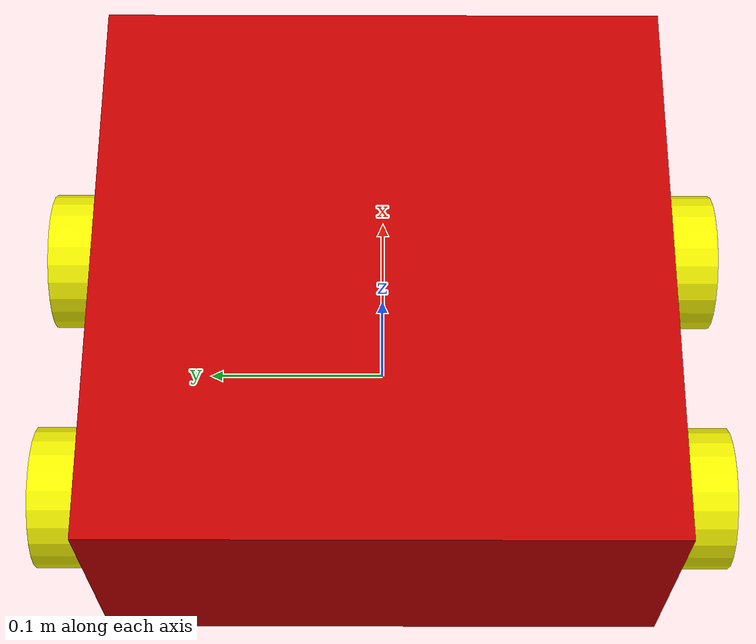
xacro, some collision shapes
<?xml version="1.0"?>
<robot xmlns:xacro="http://www.ros.org/wiki/xacro"  name="robot">

    <xacro:arg name="use_ros2_control" default="true"/>
    <xacro:arg name="sim_mode" default="false"/>

    <xacro:include filename="robot_core.xacro"/>

    <xacro:if value="$(arg use_ros2_control)">
        <xacro:include filename="gazebo_ros2_control.xacro" />
    </xacro:if>
    <xacro:unless value="$(arg use_ros2_control)">
        <xacro:include filename="gazebo_control.xacro" />
    </xacro:unless>

</robot>

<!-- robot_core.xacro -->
<robot xmlns:xacro="http://www.ros.org/wiki/xacro">

    <xacro:include filename="inertial_macros.xacro" />

    <!--Material Color Definitions-->
    <material name="white">
    <color rgba="1 1 1 1"/>
    </material>

    <material name="orange">
        <color rgba="1 0.3 0.1 1"/>
    </material>

    <material name="blue">
        <color rgba="0.2 0.2 1 1"/>
    </material>

    <material name="black">
        <color rgba="0 0 0 1"/>
    </material>

    <material name="red">
        <color rgba="0.8 0.0 0.0 1.0"/>
    </material>

    <material name="yellow">
        <color rgba="1 1 0 1"/>
    </material>

    <!--Base Link and Chassis Joints-->
    <link name="base_link">
    </link>

    <joint name="chassis_joint" type="fixed">
        <parent link="base_link"/>
        <child link="chassis"/>
        <origin xyz="-0.15 0 0"/>
    </joint>

    <!--Chassis Joint-->
    <link name="chassis">
        <visual>
            <origin xyz="0.15 0 0.075" rpy="0 0 0"/>
            <geometry>
                <mesh filename="file://$(find cohort)/meshes/base_link.STL"/>
            </geometry>
            <material name="red"/>
        </visual>

        <!--Chassis Collision-->
        <collision>
            <origin xyz="0.15 0 0.075" rpy="0 0 0"/>
            <geometry>
                <box size="0.3 0.3 0.15"/>
            </geometry>
        </collision>

        <!--Chassis Inertial-->
        <xacro:inertial_box mass="0.5" x="0.3" y="0.3" z="0.15">
            <origin xyz="0.15 0 0.075" rpy="0 0 0"/>
        </xacro:inertial_box>
    </link>

    <!--Chassis Gazebo-->
    <gazebo reference="chassis">
        <material>Gazebo/Red</material>
    </gazebo>

    <!--Front Left Wheel Joint-->
    <joint name="front_left_wheel_joint" type="continuous">
        <parent link="base_link"/>
        <child link="front_left_wheel"/>
        <origin xyz="0.075 0.175 0" rpy="-${pi/2} 0 0"/>
        <axis xyz="0 0 1"/>
    </joint>

    <!--Front Left Wheel Link-->
    <link name="front_left_wheel">
        <visual>
            <geometry>
                <cylinder length="0.04" radius="0.04" />
            </geometry>
            <material name="yellow"/>
        </visual>

        <!--Front Left Wheel Collision-->
        <collision>
            <geometry>
                <sphere radius="0.04" />
            </geometry>
        </collision>

        <!--Front Left Wheel Inertial-->
        <xacro:inertial_cylinder mass="0.1" length="0.04" radius="0.04">
            <origin xyz="0 0 0" rpy="0 0 0"/>
        </xacro:inertial_cylinder>
    </link>

    <!--Front Left Wheel Gazebo-->
    <gazebo reference="front_left_wheel">
        <material>Gazebo/Yellow</material>
    </gazebo>

    <!--Back Left Wheel Joint-->
    <joint name="back_left_wheel_joint" type="continuous">
        <parent link="base_link"/>
        <child link="back_left_wheel"/>
        <origin xyz="-0.075 0.175 0" rpy="-${pi/2} 0 0"/>
        <axis xyz="0 0 1"/>
    </joint>

    <!--Back Left Wheel Link-->
    <link name="back_left_wheel">
        <visual>
            <geometry>
                <cylinder length="0.04" radius="0.04" />
            </geometry>
            <material name="yellow"/>
        </visual>

        <!--Back Left Wheel Collision-->
        <collision>
            <geometry>
                <sphere radius="0.04" />
            </geometry>
        </collision>

        <!--Back Left Wheel Inertial-->
        <xacro:inertial_cylinder mass="0.1" length="0.04" radius="0.04">
            <origin xyz="0 0 0" rpy="0 0 0"/>
        </xacro:inertial_cylinder>
    </link>

    <!--Back Left Wheel Gazebo-->
    <gazebo reference="back_left_wheel">
        <material>Gazebo/Yellow</material>
    </gazebo>

    <!--Front Right Wheel Joint-->
    <joint name="front_right_wheel_joint" type="continuous">
        <parent link="base_link"/>
        <child link="front_right_wheel"/>
        <origin xyz="0.075 -0.175 0" rpy="${pi/2} 0 0"/>
        <axis xyz="0 0 -1"/>
    </joint>

    <!--Front Right Wheel Link-->
    <link name="front_right_wheel">
        <visual>
            <geometry>
                <cylinder length="0.04" radius="0.04" />
            </geometry>
            <material name="yellow"/>
        </visual>

        <!--Front Right Wheel Collision-->
        <collision>
            <geometry>
                <sphere radius="0.04" />
            </geometry>
        </collision>

        <!--Front Right Wheel Inertial-->
        <xacro:inertial_cylinder mass="0.1" length="0.04" radius="0.04">
            <origin xyz="0 0 0" rpy="0 0 0"/>
        </xacro:inertial_cylinder>
    </link>

    <!--Front Right Wheel Gazebo-->
    <gazebo reference="front_right_wheel">
        <material>Gazebo/Yellow</material>
    </gazebo>

    <!--Back Right Wheel Joint-->
    <joint name="back_right_wheel_joint" type="continuous">
        <parent link="base_link"/>
        <child link="back_right_wheel"/>
        <origin xyz="-0.075 -0.175 0" rpy="${pi/2} 0 0"/>
        <axis xyz="0 0 -1"/>
    </joint>

    <!--Back Right Wheel Link-->
    <link name="back_right_wheel">
        <visual>
            <geometry>
                <cylinder length="0.04" radius="0.04" />
            </geometry>
            <material name="yellow"/>
        </visual>

        <!--Back Right Wheel Collision-->
        <collision>
            <geometry>
                <sphere radius="0.04" />
            </geometry>
        </collision>

        <!--Back Right Wheel Inertial-->
        <xacro:inertial_cylinder mass="0.1" length="0.04" radius="0.04">
            <origin xyz="0 0 0" rpy="0 0 0"/>
        </xacro:inertial_cylinder>
    </link>

    <!--Back right Wheel Gazebo-->
    <gazebo reference="back_right_wheel">
        <material>Gazebo/Yellow</material>
    </gazebo>

</robot>
